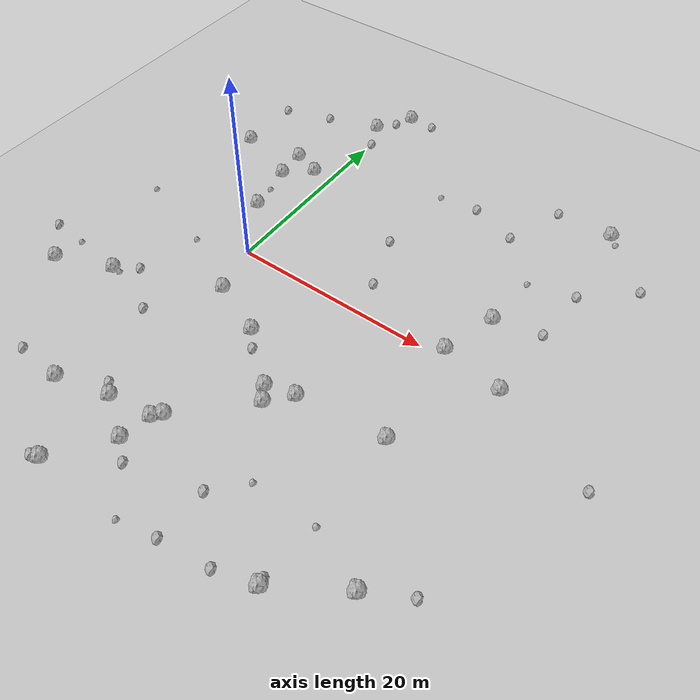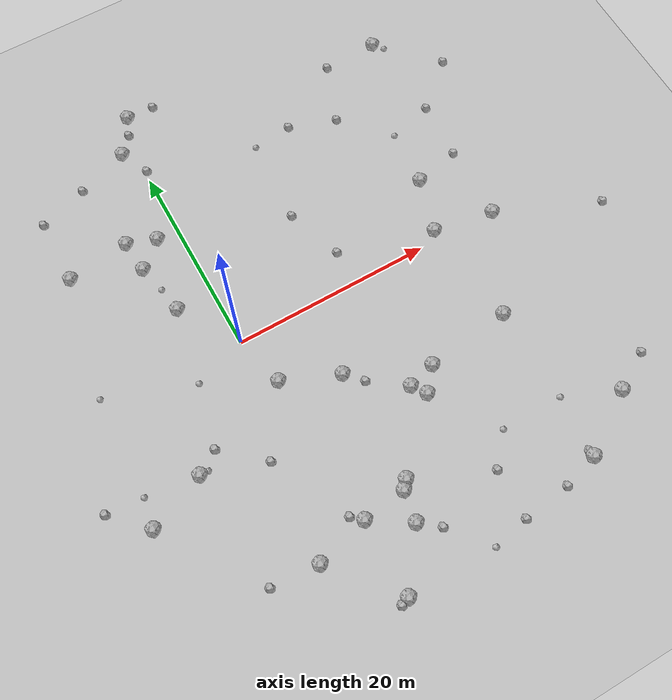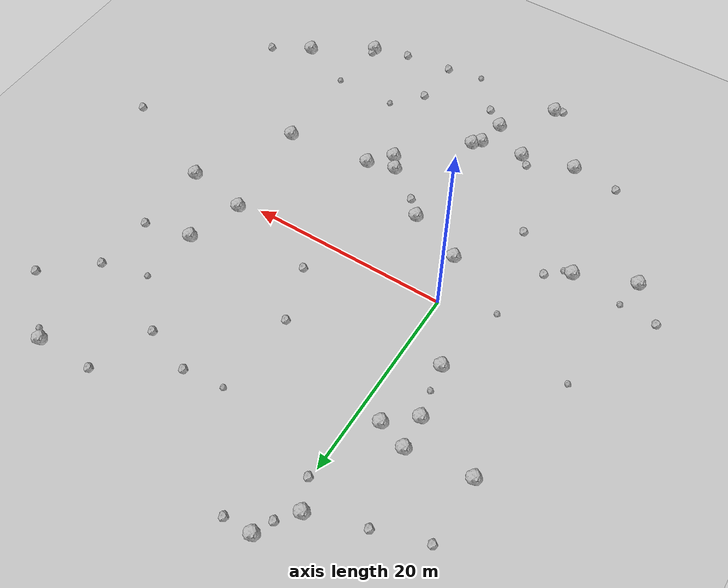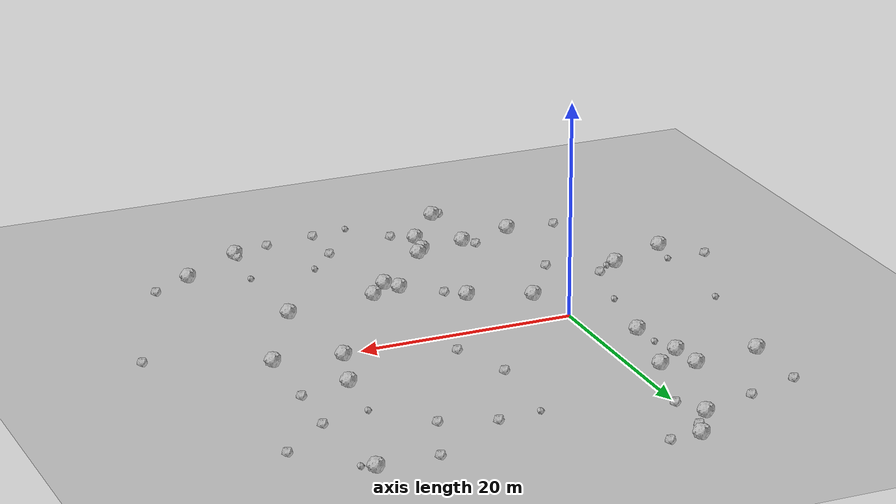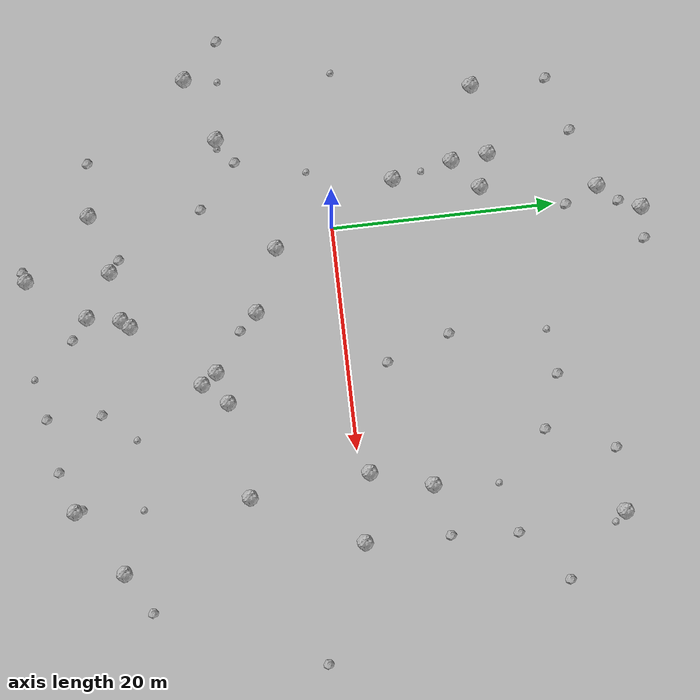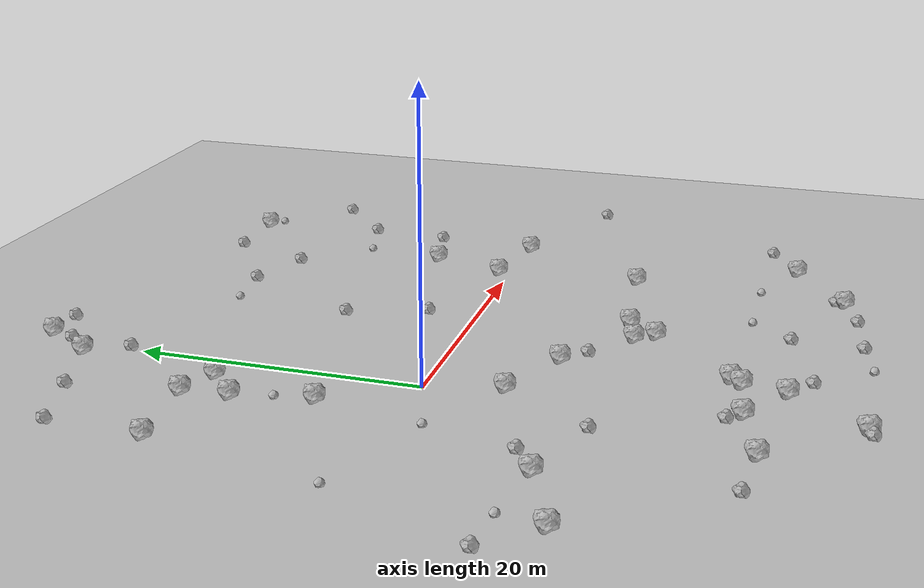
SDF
<sdf version="1.6">
 <world name="default">
  <include><uri>model://custom_ground</uri></include>
  <include><uri>model://sun</uri></include>
  <model name="rock1_0_0">
   <include><uri>model://rock1</uri><pose>28.164527271672952 -0.1924304792553997 0.5 0 0 0</pose></include>
  </model>
  <model name="rock1_0_1">
   <include><uri>model://rock1</uri><pose>23.76968117414482 6.400986430496815 0.5 0 0 0</pose></include>
  </model>
  <model name="rock1_0_2">
   <include><uri>model://rock1</uri><pose>27.977021827196104 23.02473839625312 0.5 0 0 0</pose></include>
  </model>
  <model name="rock1_0_3">
   <include><uri>model://rock1</uri><pose>-9.01086744708053 -9.468487440815448 0.5 0 0 0</pose></include>
  </model>
  <model name="rock1_0_4">
   <include><uri>model://rock1</uri><pose>23.09937537795968 -9.875111449607296 0.5 0 0 0</pose></include>
  </model>
  <model name="rock1_0_5">
   <include><uri>model://rock1</uri><pose>-3.7214753069233026 5.8805708543291715 0.5 0 0 0</pose></include>
  </model>
  <model name="rock1_0_6">
   <include><uri>model://rock1</uri><pose>11.723046146962169 -11.658758871404338 0.5 0 0 0</pose></include>
  </model>
  <model name="rock1_0_7">
   <include><uri>model://rock1</uri><pose>22.63035747315947 -25.432792986199047 0.5 0 0 0</pose></include>
  </model>
  <model name="rock1_0_8">
   <include><uri>model://rock1</uri><pose>28.51787171655964 -21.629123157213485 0.5 0 0 0</pose></include>
  </model>
  <model name="rock1_0_9">
   <include><uri>model://rock1</uri><pose>1.2296311382996166 27.657804357177667 0.5 0 0 0</pose></include>
  </model>
  <model name="rock1_0_10">
   <include><uri>model://rock1</uri><pose>5.596517588622675 -22.598671630933303 0.5 0 0 0</pose></include>
  </model>
  <model name="rock1_0_11">
   <include><uri>model://rock1</uri><pose>-3.4435045400110695 -21.515373480850116 0.5 0 0 0</pose></include>
  </model>
  <model name="rock1_0_12">
   <include><uri>model://rock1</uri><pose>-5.0530318960231035 14.56757697332705 0.5 0 0 0</pose></include>
  </model>
  <model name="rock1_0_13">
   <include><uri>model://rock1</uri><pose>1.753447125110906 -27.659550877434114 0.5 0 0 0</pose></include>
  </model>
  <model name="rock1_0_14">
   <include><uri>model://rock1</uri><pose>1.2820579549983009 -5.18686896027944 0.5 0 0 0</pose></include>
  </model>
  <model name="rock1_0_15">
   <include><uri>model://rock1</uri><pose>6.8382860505347125 -18.869072955272276 0.5 0 0 0</pose></include>
  </model>
  <model name="rock1_0_16">
   <include><uri>model://rock1</uri><pose>-11.333141751451098 13.800850390392917 0.5 0 0 0</pose></include>
  </model>
  <model name="rock1_0_17">
   <include><uri>model://rock1</uri><pose>-1.0893406360011184 23.960876699987814 0.5 0 0 0</pose></include>
  </model>
  <model name="rock1_0_18">
   <include><uri>model://rock1</uri><pose>1.7912922310670965 -20.16994230933908 0.5 0 0 0</pose></include>
  </model>
  <model name="rock1_0_19">
   <include><uri>model://rock1</uri><pose>-2.1467078241109654 13.54674496503192 0.5 0 0 0</pose></include>
  </model>
  <model name="rock1_0_20">
   <include><uri>model://rock1</uri><pose>-14.702006098364537 -11.74444503754049 0.5 0 0 0</pose></include>
  </model>
  <model name="rock1_0_21">
   <include><uri>model://rock1</uri><pose>-4.765070638609728 11.281723124268083 0.5 0 0 0</pose></include>
  </model>
  <model name="rock1_0_22">
   <include><uri>model://rock1</uri><pose>6.151205052815406 -19.62374623962574 0.5 0 0 0</pose></include>
  </model>
  <model name="rock1_0_23">
   <include><uri>model://rock1</uri><pose>6.797917934890137 -7.539143879765003 0.5 0 0 0</pose></include>
  </model>
  <model name="rock1_0_24">
   <include><uri>model://rock1</uri><pose>14.539653462869325 -10.883849346335609 0.5 0 0 0</pose></include>
  </model>
  <model name="rock1_0_25">
   <include><uri>model://rock1</uri><pose>22.069461308090283 0.8935633639868215 0.5 0 0 0</pose></include>
  </model>
  <model name="rock1_0_26">
   <include><uri>model://rock1</uri><pose>12.660475383180398 -13.033910417689526 0.5 0 0 0</pose></include>
  </model>
  <model name="rock2_0_0">
   <include><uri>model://rock2</uri><pose>-6.836833530695669 -8.007778371287095 0.3 0 0 0</pose></include>
  </model>
  <model name="rock2_0_1">
   <include><uri>model://rock2</uri><pose>8.265625455849431 -9.144436509427322 0.3 0 0 0</pose></include>
  </model>
  <model name="rock2_0_2">
   <include><uri>model://rock2</uri><pose>0.20141086636619576 21.07049008825858 0.3 0 0 0</pose></include>
  </model>
  <model name="rock2_0_3">
   <include><uri>model://rock2</uri><pose>28.797860994021732 13.46616178434369 0.3 0 0 0</pose></include>
  </model>
  <model name="rock2_0_4">
   <include><uri>model://rock2</uri><pose>19.001816478733126 -26.50103819490842 0.3 0 0 0</pose></include>
  </model>
  <model name="rock2_0_5">
   <include><uri>model://rock2</uri><pose>-11.325027479449252 20.55701517632172 0.3 0 0 0</pose></include>
  </model>
  <model name="rock2_0_6">
   <include><uri>model://rock2</uri><pose>14.357816836031553 -22.184563736346504 0.3 0 0 0</pose></include>
  </model>
  <model name="rock2_0_7">
   <include><uri>model://rock2</uri><pose>14.186706681999894 -27.092919898628764 0.3 0 0 0</pose></include>
  </model>
  <model name="rock2_0_8">
   <include><uri>model://rock2</uri><pose>12.492962902234858 3.6095414498595204 0.3 0 0 0</pose></include>
  </model>
  <model name="rock2_0_9">
   <include><uri>model://rock2</uri><pose>-17.913112849164236 -8.467963703942821 0.3 0 0 0</pose></include>
  </model>
  <model name="rock2_0_10">
   <include><uri>model://rock2</uri><pose>4.013436694726419 27.67755216931492 0.3 0 0 0</pose></include>
  </model>
  <model name="rock2_0_11">
   <include><uri>model://rock2</uri><pose>-2.9442792864211356 -11.491976817228093 0.3 0 0 0</pose></include>
  </model>
  <model name="rock2_0_12">
   <include><uri>model://rock2</uri><pose>33.40684740374053 17.53290991610151 0.3 0 0 0</pose></include>
  </model>
  <model name="rock2_0_13">
   <include><uri>model://rock2</uri><pose>7.440498466182593 -24.098210554650187 0.3 0 0 0</pose></include>
  </model>
  <model name="rock2_0_14">
   <include><uri>model://rock2</uri><pose>22.290063849603676 22.94453687206976 0.3 0 0 0</pose></include>
  </model>
  <model name="rock2_0_15">
   <include><uri>model://rock2</uri><pose>-6.404152587117434 22.17523660805537 0.3 0 0 0</pose></include>
  </model>
  <model name="rock2_0_16">
   <include><uri>model://rock2</uri><pose>0.39661946883234833 25.777261578468995 0.3 0 0 0</pose></include>
  </model>
  <model name="rock2_0_17">
   <include><uri>model://rock2</uri><pose>0.7469694550405563 -19.255737183829012 0.3 0 0 0</pose></include>
  </model>
  <model name="rock2_0_18">
   <include><uri>model://rock2</uri><pose>15.194922827029693 18.521162433937747 0.3 0 0 0</pose></include>
  </model>
  <model name="rock2_0_19">
   <include><uri>model://rock2</uri><pose>0.8921547741559337 -27.945454543513467 0.3 0 0 0</pose></include>
  </model>
  <model name="rock2_0_20">
   <include><uri>model://rock2</uri><pose>28.382652205752883 7.466068308630852 0.3 0 0 0</pose></include>
  </model>
  <model name="rock2_0_21">
   <include><uri>model://rock2</uri><pose>10.556472635340764 9.330002461730295 0.3 0 0 0</pose></include>
  </model>
  <model name="rock2_0_22">
   <include><uri>model://rock2</uri><pose>38.43246105460997 -4.588104483157693 0.3 0 0 0</pose></include>
  </model>
  <model name="rock2_0_23">
   <include><uri>model://rock2</uri><pose>32.25268000098687 -19.50213340432473 0.3 0 0 0</pose></include>
  </model>
  <model name="rock2_0_24">
   <include><uri>model://rock2</uri><pose>22.553097573165758 -24.81857861596783 0.3 0 0 0</pose></include>
  </model>
  <model name="rock2_0_25">
   <include><uri>model://rock2</uri><pose>-8.207944640817475 -21.137582881073705 0.3 0 0 0</pose></include>
  </model>
  <model name="rock2_0_26">
   <include><uri>model://rock2</uri><pose>19.967354624847516 16.85099578591261 0.3 0 0 0</pose></include>
  </model>
  <model name="rock3_0_0">
   <include><uri>model://rock3</uri><pose>10.538686775296593 -27.860117495546202 0.2 0 0 0</pose></include>
  </model>
  <model name="rock3_0_1">
   <include><uri>model://rock3</uri><pose>-8.240402194448482 -9.474680197306157 0.2 0 0 0</pose></include>
  </model>
  <model name="rock3_0_2">
   <include><uri>model://rock3</uri><pose>-5.2838951278435236 -1.7613773371454613 0.2 0 0 0</pose></include>
  </model>
  <model name="rock3_0_3">
   <include><uri>model://rock3</uri><pose>24.245672902668204 12.215946945206476 0.2 0 0 0</pose></include>
  </model>
  <model name="rock3_0_4">
   <include><uri>model://rock3</uri><pose>11.141891697416053 18.02346754939908 0.2 0 0 0</pose></include>
  </model>
  <model name="rock3_0_5">
   <include><uri>model://rock3</uri><pose>16.892807326778197 -19.35254898198168 0.2 0 0 0</pose></include>
  </model>
  <model name="rock3_0_6">
   <include><uri>model://rock3</uri><pose>23.14444433929146 -19.392707566069106 0.2 0 0 0</pose></include>
  </model>
  <model name="rock3_0_7">
   <include><uri>model://rock3</uri><pose>-14.268519570938558 -8.803358138252989 0.2 0 0 0</pose></include>
  </model>
  <model name="rock3_0_8">
   <include><uri>model://rock3</uri><pose>28.83215984620496 22.091074064769252 0.2 0 0 0</pose></include>
  </model>
  <model name="rock3_0_9">
   <include><uri>model://rock3</uri><pose>-13.927441247494938 1.3896657610578167 0.2 0 0 0</pose></include>
  </model>
  <model name="rock3_0_10">
   <include><uri>model://rock3</uri><pose>-4.187000374937783 8.48978183856994 0.2 0 0 0</pose></include>
  </model>
 </world>
</sdf>
